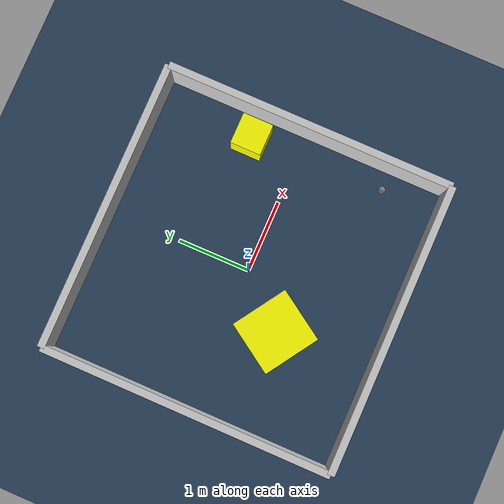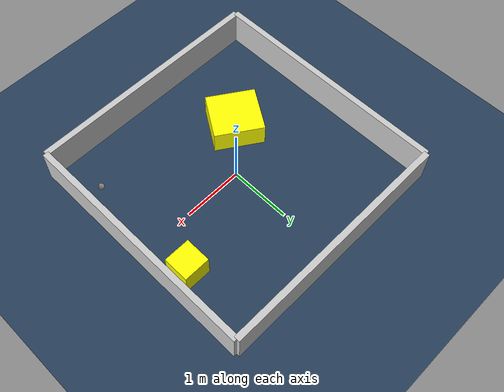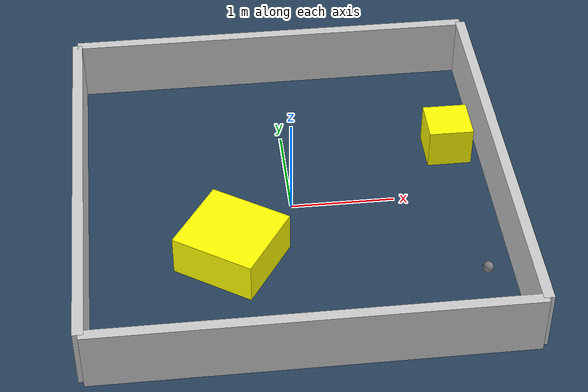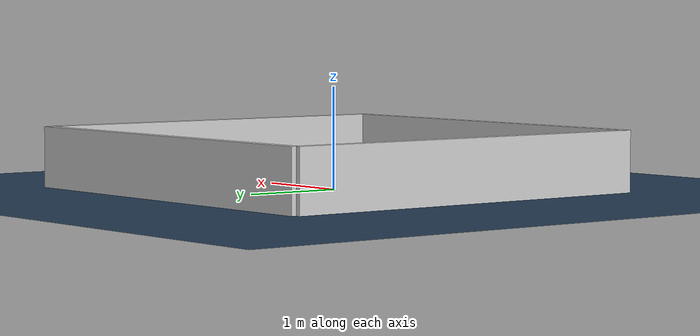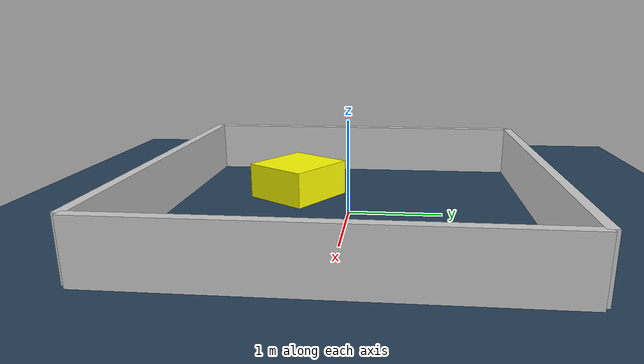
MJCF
<?xml version="1.0" ?>
<mujoco model="generated_environment">
  <option timestep="0.01" integrator="RK4" cone="elliptic"/>
  <default>
    <geom density="1"/>
  </default>
  <asset>
    <texture builtin="gradient" height="3072" rgb1="0.3 0.5 0.7" rgb2="0 0 0" type="skybox" width="512"/>
    <texture builtin="checker" height="300" mark="edge" markrgb="0.8 0.8 0.8" name="groundplane" rgb1="0.2 0.3 0.4" rgb2="0.1 0.2 0.3" type="2d" width="300"/>
    <material name="groundplane" reflectance="0.2" texrepeat="5 5" texture="groundplane" texuniform="true"/>
    <material name="robot" rgba="0.0 1.0 0.0 1"/>
  </asset>
  <worldbody>
    <light dir="0 0 -1" directional="true" pos="0 0 1.5"/>
    <geom condim="4" friction="1.0 0.005 0.001" material="groundplane" name="floor" size="0 0 0.05" type="plane"/>
    <body name="walls">
      <geom name="wall_1" condim="4" pos="-2.0 0.0 0.3" rgba="0.800000011920929 0.800000011920929 0.800000011920929 1.0" size="0.05 2.0 0.3" type="box"/>
      <geom name="wall_2" condim="4" pos="2.0 0.0 0.3" rgba="0.800000011920929 0.800000011920929 0.800000011920929 1.0" size="0.05 2.0 0.3" type="box"/>
      <geom name="wall_3" condim="4" pos="0.0 -2.0 0.3" rgba="0.800000011920929 0.800000011920929 0.800000011920929 1.0" size="2.0 0.05 0.3" type="box"/>
      <geom name="wall_4" condim="4" pos="0.0 2.0 0.3" rgba="0.800000011920929 0.800000011920929 0.800000011920929 1.0" size="2.0 0.05 0.3" type="box"/>
    </body>
    <body name="robot">
      <joint name="joint_x" type="slide" pos="0 0 0" axis="1 0 0"/>
      <joint name="joint_y" type="slide" pos="0 0 0" axis="0 1 0"/>
      <geom name="robot" type="sphere" pos="1.671575612547834 -1.2002339787982121 0.2" size="0.05" mass="5." friction="1.0 0.005 0.0001" condim="4"/>
      <site name="sensor_ball"/>
    </body>
    <body name="obstacle_1_movable">
      <geom name="obstacle_1_movable" condim="4" pos="1.6375653984611234 0.6635051677822839 0.2" euler="0 0 89.85151631279479" friction="1.0 0.005 0.001" rgba="1 1 0 1" size="0.21215001415976933 0.2170498227821195 0.2" type="box" mass="0.1"/>
      <joint type="free"/>
    </body>
    <body name="obstacle_2_movable">
      <geom name="obstacle_2_movable" condim="4" pos="-0.6194137067175147 -0.6524886697388355 0.2" euler="0 0 146.82697383701247" friction="1.0 0.005 0.001" rgba="1 1 0 1" size="0.4050861777942144 0.3846012444810971 0.2" type="box" mass="0.1"/>
      <joint type="free"/>
    </body>
  </worldbody>
  <actuator>
    <motor name="actuator_x" joint="joint_x" gear="1" ctrlrange="-1 1"/>
    <motor name="actuator_y" joint="joint_y" gear="1" ctrlrange="-1 1"/>
  </actuator>
</mujoco>
